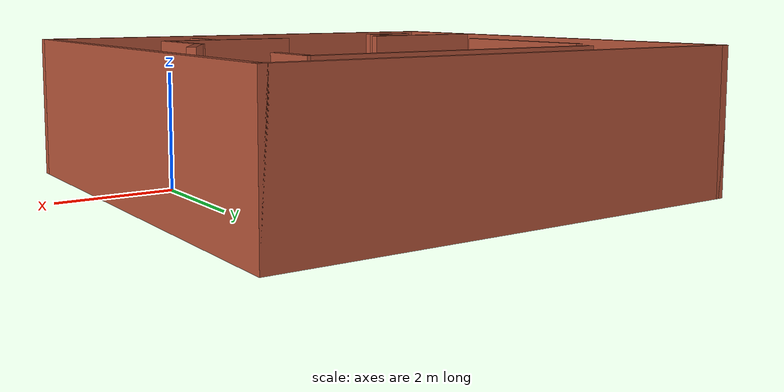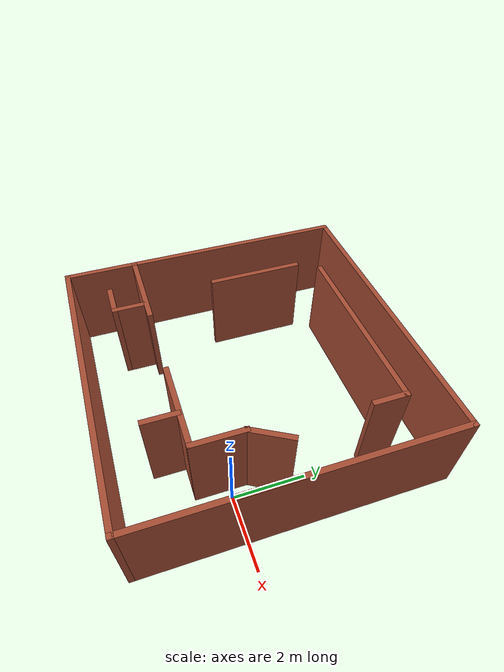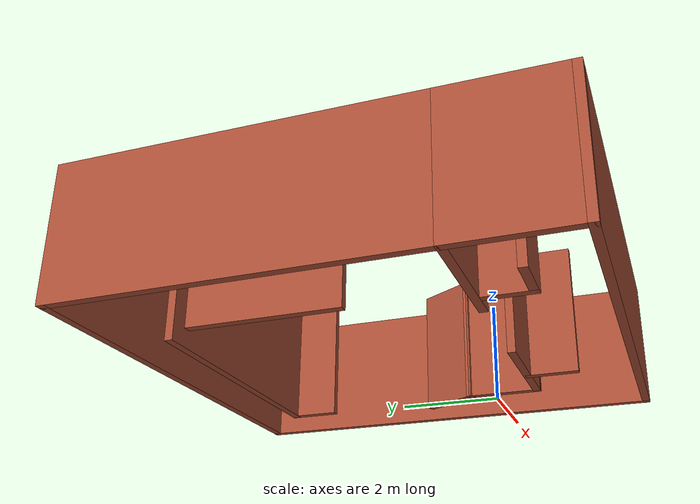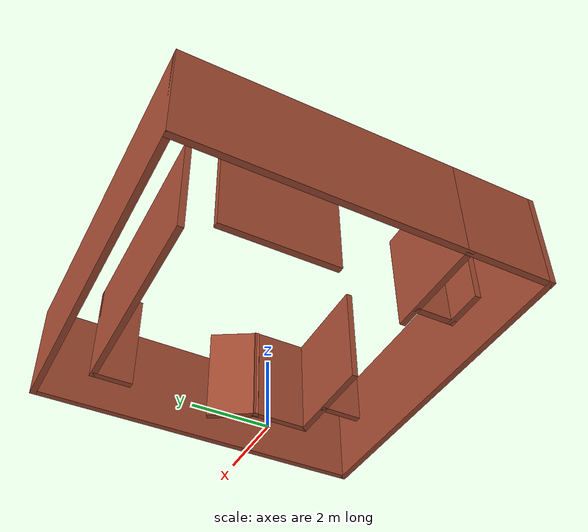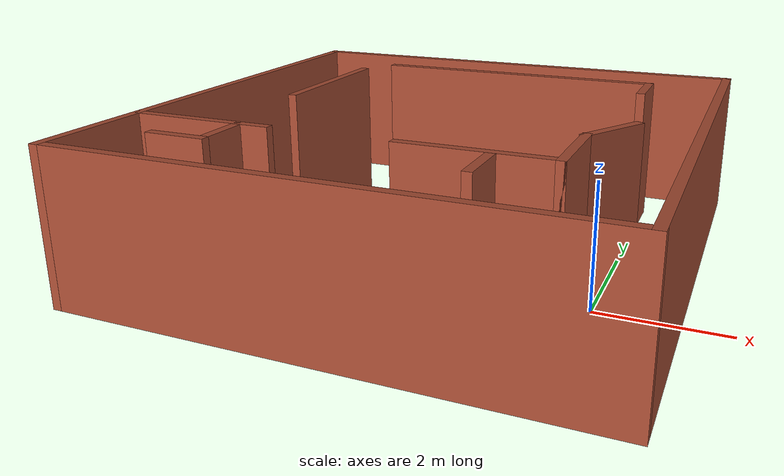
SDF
<?xml version='1.0'?>
<sdf version='1.7'>
  <model name='myturtlebot3_world'>
    <pose>-2.975 1.33124 0 0 -0 0</pose>
    <link name='Wall_10'>
      <collision name='Wall_10_Collision'>
        <geometry>
          <box>
            <size>2.5 0.15 2.5</size>
          </box>
        </geometry>
        <pose>0 0 1.25 0 -0 0</pose>
      </collision>
      <visual name='Wall_10_Visual'>
        <pose>0 0 1.25 0 -0 0</pose>
        <geometry>
          <box>
            <size>2.5 0.15 2.5</size>
          </box>
        </geometry>
        <material>
          <script>
            <uri>file://media/materials/scripts/gazebo.material</uri>
            <name>Gazebo/Bricks</name>
          </script>
          <ambient>1 1 1 1</ambient>
        </material>
        <meta>
          <layer>0</layer>
        </meta>
      </visual>
      <pose>1.48861 -2.18806 0 0 -0 0</pose>
    </link>
    <link name='Wall_11'>
      <collision name='Wall_11_Collision'>
        <geometry>
          <box>
            <size>1.5 0.15 2.5</size>
          </box>
        </geometry>
        <pose>0 0 1.25 0 -0 0</pose>
      </collision>
      <visual name='Wall_11_Visual'>
        <pose>0 0 1.25 0 -0 0</pose>
        <geometry>
          <box>
            <size>1.5 0.15 2.5</size>
          </box>
        </geometry>
        <material>
          <script>
            <uri>file://media/materials/scripts/gazebo.material</uri>
            <name>Gazebo/Bricks</name>
          </script>
          <ambient>1 1 1 1</ambient>
        </material>
        <meta>
          <layer>0</layer>
        </meta>
      </visual>
      <pose>2.66361 -1.51306 0 0 -0 1.5708</pose>
    </link>
    <link name='Wall_12'>
      <collision name='Wall_12_Collision'>
        <geometry>
          <box>
            <size>1.25 0.15 2.5</size>
          </box>
        </geometry>
        <pose>0 0 1.25 0 -0 0</pose>
      </collision>
      <visual name='Wall_12_Visual'>
        <pose>0 0 1.25 0 -0 0</pose>
        <geometry>
          <box>
            <size>1.25 0.15 2.5</size>
          </box>
        </geometry>
        <material>
          <script>
            <uri>file://media/materials/scripts/gazebo.material</uri>
            <name>Gazebo/Bricks</name>
          </script>
          <ambient>1 1 1 1</ambient>
        </material>
        <meta>
          <layer>0</layer>
        </meta>
      </visual>
      <pose>2.93861 -0.36175 0 0 -0 1.0472</pose>
    </link>
    <link name='Wall_14'>
      <collision name='Wall_14_Collision'>
        <geometry>
          <box>
            <size>2.75 0.15 2.5</size>
          </box>
        </geometry>
        <pose>0 0 1.25 0 -0 0</pose>
      </collision>
      <visual name='Wall_14_Visual'>
        <pose>0 0 1.25 0 -0 0</pose>
        <geometry>
          <box>
            <size>2.75 0.15 2.5</size>
          </box>
        </geometry>
        <material>
          <script>
            <uri>file://media/materials/scripts/gazebo.material</uri>
            <name>Gazebo/Bricks</name>
          </script>
          <ambient>1 1 1 1</ambient>
        </material>
        <meta>
          <layer>0</layer>
        </meta>
      </visual>
      <pose>-2.60739 1.20494 0 0 -0 1.5708</pose>
    </link>
    <link name='Wall_17'>
      <collision name='Wall_17_Collision'>
        <geometry>
          <box>
            <size>5.25 0.15 2.5</size>
          </box>
        </geometry>
        <pose>0 0 1.25 0 -0 0</pose>
      </collision>
      <visual name='Wall_17_Visual'>
        <pose>0 0 1.25 0 -0 0</pose>
        <geometry>
          <box>
            <size>5.25 0.15 2.5</size>
          </box>
        </geometry>
        <material>
          <script>
            <uri>file://media/materials/scripts/gazebo.material</uri>
            <name>Gazebo/Bricks</name>
          </script>
          <ambient>1 1 1 1</ambient>
        </material>
        <meta>
          <layer>0</layer>
        </meta>
      </visual>
      <pose>0.356609 3.14794 0 0 -0 0</pose>
    </link>
    <link name='Wall_18'>
      <collision name='Wall_18_Collision'>
        <geometry>
          <box>
            <size>1 0.15 2.5</size>
          </box>
        </geometry>
        <pose>0 0 1.25 0 -0 0</pose>
      </collision>
      <visual name='Wall_18_Visual'>
        <pose>0 0 1.25 0 -0 0</pose>
        <geometry>
          <box>
            <size>1 0.15 2.5</size>
          </box>
        </geometry>
        <material>
          <script>
            <uri>file://media/materials/scripts/gazebo.material</uri>
            <name>Gazebo/Bricks</name>
          </script>
          <ambient>1 1 1 1</ambient>
        </material>
        <meta>
          <layer>0</layer>
        </meta>
      </visual>
      <pose>2.90661 2.72294 0 0 -0 -1.5708</pose>
    </link>
    <link name='Wall_20'>
      <collision name='Wall_20_Collision'>
        <geometry>
          <box>
            <size>1 0.15 2.5</size>
          </box>
        </geometry>
        <pose>0 0 1.25 0 -0 0</pose>
      </collision>
      <visual name='Wall_20_Visual'>
        <pose>0 0 1.25 0 -0 0</pose>
        <geometry>
          <box>
            <size>1 0.15 2.5</size>
          </box>
        </geometry>
        <material>
          <script>
            <uri>file://media/materials/scripts/gazebo.material</uri>
            <name>Gazebo/Bricks</name>
          </script>
          <ambient>1 1 1 1</ambient>
        </material>
        <meta>
          <layer>0</layer>
        </meta>
      </visual>
      <pose>1.71557 -2.65168 0 0 -0 -1.5708</pose>
    </link>
    <link name='Wall_22'>
      <collision name='Wall_22_Collision'>
        <geometry>
          <box>
            <size>1 0.15 2.5</size>
          </box>
        </geometry>
        <pose>0 0 1.25 0 -0 0</pose>
      </collision>
      <visual name='Wall_22_Visual'>
        <pose>0 0 1.25 0 -0 0</pose>
        <geometry>
          <box>
            <size>1 0.15 2.5</size>
          </box>
        </geometry>
        <material>
          <script>
            <uri>file://media/materials/scripts/gazebo.material</uri>
            <name>Gazebo/Bricks</name>
          </script>
          <ambient>1 1 1 1</ambient>
        </material>
        <meta>
          <layer>0</layer>
        </meta>
      </visual>
      <pose>-2.28643 -2.65168 0 0 -0 -1.5708</pose>
    </link>
    <link name='Wall_23'>
      <collision name='Wall_23_Collision'>
        <geometry>
          <box>
            <size>1 0.15 2.5</size>
          </box>
        </geometry>
        <pose>0 0 1.25 0 -0 0</pose>
      </collision>
      <visual name='Wall_23_Visual'>
        <pose>0 0 1.25 0 -0 0</pose>
        <geometry>
          <box>
            <size>1 0.15 2.5</size>
          </box>
        </geometry>
        <material>
          <script>
            <uri>file://media/materials/scripts/gazebo.material</uri>
            <name>Gazebo/Bricks</name>
          </script>
          <ambient>1 1 1 1</ambient>
        </material>
        <meta>
          <layer>0</layer>
        </meta>
      </visual>
      <pose>-2.71143 -3.07668 0 0 -0 3.14159</pose>
    </link>
    <link name='Wall_3'>
      <collision name='Wall_3_Collision'>
        <geometry>
          <box>
            <size>6.5 0.15 2.5</size>
          </box>
        </geometry>
        <pose>0 0 1.25 0 -0 0</pose>
      </collision>
      <visual name='Wall_3_Visual'>
        <pose>0 0 1.25 0 -0 0</pose>
        <geometry>
          <box>
            <size>6.5 0.15 2.5</size>
          </box>
        </geometry>
        <material>
          <script>
            <uri>file://media/materials/scripts/gazebo.material</uri>
            <name>Gazebo/Bricks</name>
          </script>
          <ambient>1 1 1 1</ambient>
        </material>
        <meta>
          <layer>0</layer>
        </meta>
      </visual>
      <pose>-4.175 1 0 0 -0 1.5708</pose>
    </link>
    <link name='Wall_4'>
      <collision name='Wall_4_Collision'>
        <geometry>
          <box>
            <size>8.5 0.15 2.5</size>
          </box>
        </geometry>
        <pose>0 0 1.25 0 -0 0</pose>
      </collision>
      <visual name='Wall_4_Visual'>
        <pose>0 0 1.25 0 -0 0</pose>
        <geometry>
          <box>
            <size>8.5 0.15 2.5</size>
          </box>
        </geometry>
        <material>
          <script>
            <uri>file://media/materials/scripts/gazebo.material</uri>
            <name>Gazebo/Bricks</name>
          </script>
          <ambient>1 1 1 1</ambient>
        </material>
        <meta>
          <layer>0</layer>
        </meta>
      </visual>
      <pose>0 4.175 0 0 -0 0</pose>
    </link>
    <link name='Wall_5'>
      <collision name='Wall_5_Collision'>
        <geometry>
          <box>
            <size>8.5 0.15 2.5</size>
          </box>
        </geometry>
        <pose>0 0 1.25 0 -0 0</pose>
      </collision>
      <visual name='Wall_5_Visual'>
        <pose>0 0 1.25 0 -0 0</pose>
        <geometry>
          <box>
            <size>8.5 0.15 2.5</size>
          </box>
        </geometry>
        <material>
          <script>
            <uri>file://media/materials/scripts/gazebo.material</uri>
            <name>Gazebo/Bricks</name>
          </script>
          <ambient>1 1 1 1</ambient>
        </material>
        <meta>
          <layer>0</layer>
        </meta>
      </visual>
      <pose>4.175 -0 0 0 -0 -1.5708</pose>
    </link>
    <link name='Wall_6'>
      <collision name='Wall_6_Collision'>
        <geometry>
          <box>
            <size>8.5 0.15 2.5</size>
          </box>
        </geometry>
        <pose>0 0 1.25 0 -0 0</pose>
      </collision>
      <visual name='Wall_6_Visual'>
        <pose>0 0 1.25 0 -0 0</pose>
        <geometry>
          <box>
            <size>8.5 0.15 2.5</size>
          </box>
        </geometry>
        <material>
          <script>
            <uri>file://media/materials/scripts/gazebo.material</uri>
            <name>Gazebo/Bricks</name>
          </script>
          <ambient>1 1 1 1</ambient>
        </material>
        <meta>
          <layer>0</layer>
        </meta>
      </visual>
      <pose>0 -4.175 0 0 -0 3.14159</pose>
    </link>
    <link name='Wall_7'>
      <collision name='Wall_7_Collision'>
        <geometry>
          <box>
            <size>2.15 0.15 2.5</size>
          </box>
        </geometry>
        <pose>0 0 1.25 0 -0 0</pose>
      </collision>
      <visual name='Wall_7_Visual'>
        <pose>0 0 1.25 0 -0 0</pose>
        <geometry>
          <box>
            <size>2.15 0.15 2.5</size>
          </box>
        </geometry>
        <material>
          <script>
            <uri>file://media/materials/scripts/gazebo.material</uri>
            <name>Gazebo/Bricks</name>
          </script>
          <ambient>1 1 1 1</ambient>
        </material>
        <meta>
          <layer>0</layer>
        </meta>
      </visual>
      <pose>-4.175 -3.175 0 0 -0 1.5708</pose>
    </link>
    <link name='Wall_8'>
      <collision name='Wall_8_Collision'>
        <geometry>
          <box>
            <size>2.5 0.15 2.5</size>
          </box>
        </geometry>
        <pose>0 0 1.25 0 -0 0</pose>
      </collision>
      <visual name='Wall_8_Visual'>
        <pose>0 0 1.25 0 -0 0</pose>
        <geometry>
          <box>
            <size>2.5 0.15 2.5</size>
          </box>
        </geometry>
        <material>
          <script>
            <uri>file://media/materials/scripts/gazebo.material</uri>
            <name>Gazebo/Bricks</name>
          </script>
          <ambient>1 1 1 1</ambient>
        </material>
        <meta>
          <layer>0</layer>
        </meta>
      </visual>
      <pose>-3 -2.175 0 0 -0 0</pose>
    </link>
    <static>1</static>
  </model>
</sdf>
